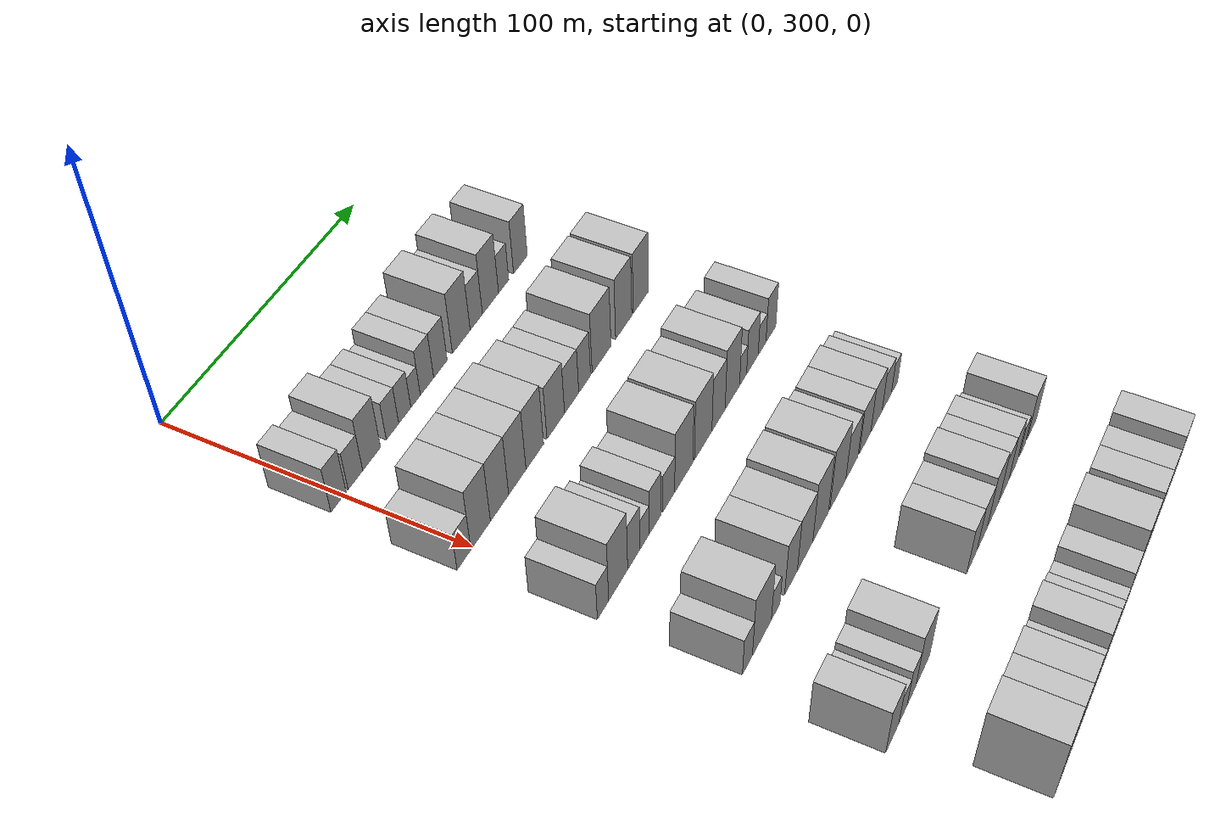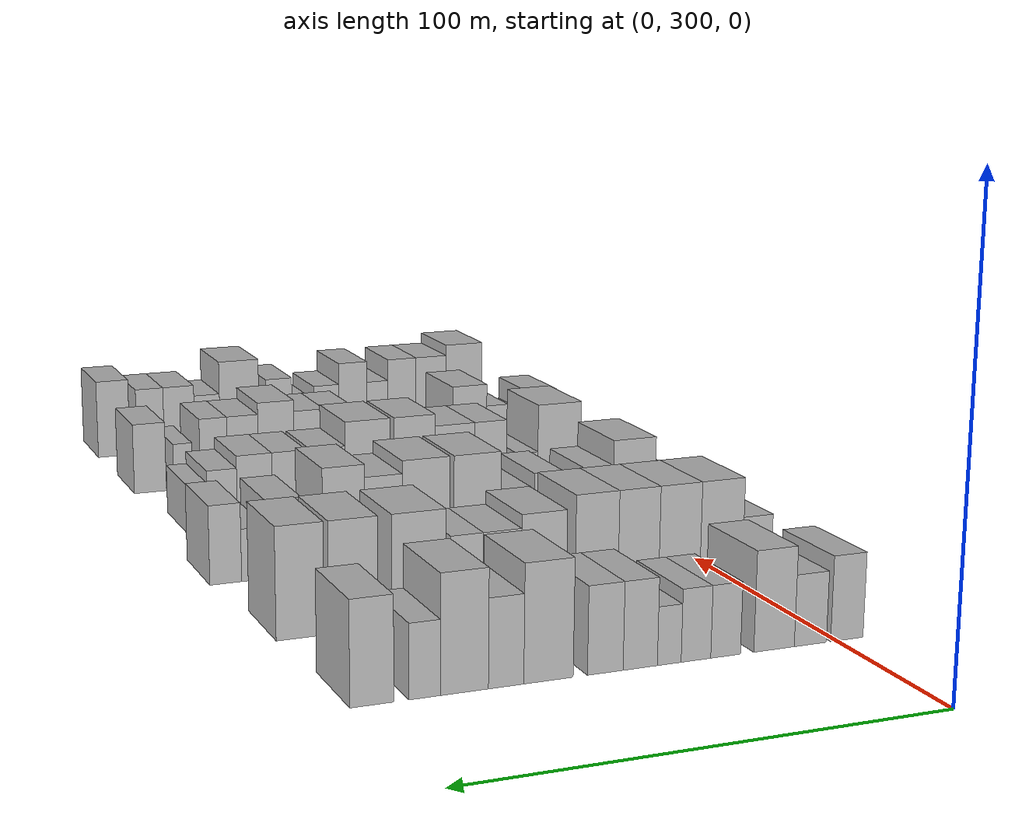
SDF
<sdf version="1.6">
 <world name="default">
  <model name="building_105">
   <static>1</static>
   <pose>50.0000 297.5111 0 0.000000 0.000000 0.000000</pose>
   <link name="link">
    <pose>0 0 9.00 0 0 0</pose>
    <collision name="collision"><geometry><box><size>20.0000 7.5519 18.0000</size></box></geometry></collision>
    <visual name="visual">
     <cast_shadows>0</cast_shadows>
     <geometry><box><size>20.0000 7.5519 18.0000</size></box></geometry>
     <material>
      <script>
       <uri>model://HANNAS_wall/materials/scripts</uri>
       <uri>model://HANNAS_wall/materials/textures</uri>
       <name>vrc/HANNAS_wall</name>
      </script>
     </material>
    </visual>
   </link>
  </model>
  <model name="building_106">
   <static>1</static>
   <pose>50.0000 305.9801 0 0.000000 0.000000 0.000000</pose>
   <link name="link">
    <pose>0 0 7.50 0 0 0</pose>
    <collision name="collision"><geometry><box><size>20.0000 7.3862 15.0000</size></box></geometry></collision>
    <visual name="visual">
     <cast_shadows>0</cast_shadows>
     <geometry><box><size>20.0000 7.3862 15.0000</size></box></geometry>
     <material>
      <script>
       <uri>model://HANNAS_wall/materials/scripts</uri>
       <uri>model://HANNAS_wall/materials/textures</uri>
       <name>vrc/HANNAS_wall</name>
      </script>
     </material>
    </visual>
   </link>
  </model>
  <model name="building_107">
   <static>1</static>
   <pose>50.0000 314.2756 0 0.000000 0.000000 0.000000</pose>
   <link name="link">
    <pose>0 0 10.50 0 0 0</pose>
    <collision name="collision"><geometry><box><size>20.0000 9.2049 21.0000</size></box></geometry></collision>
    <visual name="visual">
     <cast_shadows>0</cast_shadows>
     <geometry><box><size>20.0000 9.2049 21.0000</size></box></geometry>
     <material>
      <script>
       <uri>model://HANNAS_wall/materials/scripts</uri>
       <uri>model://HANNAS_wall/materials/textures</uri>
       <name>vrc/HANNAS_wall</name>
      </script>
     </material>
    </visual>
   </link>
  </model>
  <model name="building_108">
   <static>1</static>
   <pose>50.0000 325.1933 0 0.000000 0.000000 0.000000</pose>
   <link name="link">
    <pose>0 0 7.50 0 0 0</pose>
    <collision name="collision"><geometry><box><size>20.0000 6.6305 15.0000</size></box></geometry></collision>
    <visual name="visual">
     <cast_shadows>0</cast_shadows>
     <geometry><box><size>20.0000 6.6305 15.0000</size></box></geometry>
     <material>
      <script>
       <uri>model://HANNAS_wall/materials/scripts</uri>
       <uri>model://HANNAS_wall/materials/textures</uri>
       <name>vrc/HANNAS_wall</name>
      </script>
     </material>
    </visual>
   </link>
  </model>
  <model name="building_109">
   <static>1</static>
   <pose>50.0000 331.7762 0 0.000000 0.000000 0.000000</pose>
   <link name="link">
    <pose>0 0 7.50 0 0 0</pose>
    <collision name="collision"><geometry><box><size>20.0000 6.5353 15.0000</size></box></geometry></collision>
    <visual name="visual">
     <cast_shadows>0</cast_shadows>
     <geometry><box><size>20.0000 6.5353 15.0000</size></box></geometry>
     <material>
      <script>
       <uri>model://HANNAS_wall/materials/scripts</uri>
       <uri>model://HANNAS_wall/materials/textures</uri>
       <name>vrc/HANNAS_wall</name>
      </script>
     </material>
    </visual>
   </link>
  </model>
  <model name="building_110">
   <static>1</static>
   <pose>50.0000 337.6390 0 0.000000 0.000000 0.000000</pose>
   <link name="link">
    <pose>0 0 6.00 0 0 0</pose>
    <collision name="collision"><geometry><box><size>20.0000 5.1903 12.0000</size></box></geometry></collision>
    <visual name="visual">
     <cast_shadows>0</cast_shadows>
     <geometry><box><size>20.0000 5.1903 12.0000</size></box></geometry>
     <material>
      <script>
       <uri>model://HANNAS_wall/materials/scripts</uri>
       <uri>model://HANNAS_wall/materials/textures</uri>
       <name>vrc/HANNAS_wall</name>
      </script>
     </material>
    </visual>
   </link>
  </model>
  <model name="building_111">
   <static>1</static>
   <pose>50.0000 343.9298 0 0.000000 0.000000 0.000000</pose>
   <link name="link">
    <pose>0 0 9.00 0 0 0</pose>
    <collision name="collision"><geometry><box><size>20.0000 7.3913 18.0000</size></box></geometry></collision>
    <visual name="visual">
     <cast_shadows>0</cast_shadows>
     <geometry><box><size>20.0000 7.3913 18.0000</size></box></geometry>
     <material>
      <script>
       <uri>model://HANNAS_wall/materials/scripts</uri>
       <uri>model://HANNAS_wall/materials/textures</uri>
       <name>vrc/HANNAS_wall</name>
      </script>
     </material>
    </visual>
   </link>
  </model>
  <model name="building_112">
   <static>1</static>
   <pose>50.0000 351.4288 0 0.000000 0.000000 0.000000</pose>
   <link name="link">
    <pose>0 0 9.00 0 0 0</pose>
    <collision name="collision"><geometry><box><size>20.0000 7.6069 18.0000</size></box></geometry></collision>
    <visual name="visual">
     <cast_shadows>0</cast_shadows>
     <geometry><box><size>20.0000 7.6069 18.0000</size></box></geometry>
     <material>
      <script>
       <uri>model://HANNAS_wall/materials/scripts</uri>
       <uri>model://HANNAS_wall/materials/textures</uri>
       <name>vrc/HANNAS_wall</name>
      </script>
     </material>
    </visual>
   </link>
  </model>
  <model name="building_113">
   <static>1</static>
   <pose>50.0000 363.3846 0 0.000000 0.000000 0.000000</pose>
   <link name="link">
    <pose>0 0 12.00 0 0 0</pose>
    <collision name="collision"><geometry><box><size>20.0000 10.3046 24.0000</size></box></geometry></collision>
    <visual name="visual">
     <cast_shadows>0</cast_shadows>
     <geometry><box><size>20.0000 10.3046 24.0000</size></box></geometry>
     <material>
      <script>
       <uri>model://HANNAS_wall/materials/scripts</uri>
       <uri>model://HANNAS_wall/materials/textures</uri>
       <name>vrc/HANNAS_wall</name>
      </script>
     </material>
    </visual>
   </link>
  </model>
  <model name="building_114">
   <static>1</static>
   <pose>50.0000 372.1732 0 0.000000 0.000000 0.000000</pose>
   <link name="link">
    <pose>0 0 9.00 0 0 0</pose>
    <collision name="collision"><geometry><box><size>20.0000 7.2727 18.0000</size></box></geometry></collision>
    <visual name="visual">
     <cast_shadows>0</cast_shadows>
     <geometry><box><size>20.0000 7.2727 18.0000</size></box></geometry>
     <material>
      <script>
       <uri>model://HANNAS_wall/materials/scripts</uri>
       <uri>model://HANNAS_wall/materials/textures</uri>
       <name>vrc/HANNAS_wall</name>
      </script>
     </material>
    </visual>
   </link>
  </model>
  <model name="building_115">
   <static>1</static>
   <pose>50.0000 380.6760 0 0.000000 0.000000 0.000000</pose>
   <link name="link">
    <pose>0 0 12.00 0 0 0</pose>
    <collision name="collision"><geometry><box><size>20.0000 9.7329 24.0000</size></box></geometry></collision>
    <visual name="visual">
     <cast_shadows>0</cast_shadows>
     <geometry><box><size>20.0000 9.7329 24.0000</size></box></geometry>
     <material>
      <script>
       <uri>model://HANNAS_wall/materials/scripts</uri>
       <uri>model://HANNAS_wall/materials/textures</uri>
       <name>vrc/HANNAS_wall</name>
      </script>
     </material>
    </visual>
   </link>
  </model>
  <model name="building_116">
   <static>1</static>
   <pose>50.0000 388.6592 0 0.000000 0.000000 0.000000</pose>
   <link name="link">
    <pose>0 0 7.50 0 0 0</pose>
    <collision name="collision"><geometry><box><size>20.0000 6.2336 15.0000</size></box></geometry></collision>
    <visual name="visual">
     <cast_shadows>0</cast_shadows>
     <geometry><box><size>20.0000 6.2336 15.0000</size></box></geometry>
     <material>
      <script>
       <uri>model://HANNAS_wall/materials/scripts</uri>
       <uri>model://HANNAS_wall/materials/textures</uri>
       <name>vrc/HANNAS_wall</name>
      </script>
     </material>
    </visual>
   </link>
  </model>
  <model name="building_117">
   <static>1</static>
   <pose>50.0000 399.0877 0 0.000000 0.000000 0.000000</pose>
   <link name="link">
    <pose>0 0 10.50 0 0 0</pose>
    <collision name="collision"><geometry><box><size>20.0000 8.6234 21.0000</size></box></geometry></collision>
    <visual name="visual">
     <cast_shadows>0</cast_shadows>
     <geometry><box><size>20.0000 8.6234 21.0000</size></box></geometry>
     <material>
      <script>
       <uri>model://HANNAS_wall/materials/scripts</uri>
       <uri>model://HANNAS_wall/materials/textures</uri>
       <name>vrc/HANNAS_wall</name>
      </script>
     </material>
    </visual>
   </link>
  </model>
  <model name="building_247">
   <static>1</static>
   <pose>90.0000 295.4434 0 0.000000 0.000000 0.000000</pose>
   <link name="link">
    <pose>0 0 7.50 0 0 0</pose>
    <collision name="collision"><geometry><box><size>20.0000 7.2293 15.0000</size></box></geometry></collision>
    <visual name="visual">
     <cast_shadows>0</cast_shadows>
     <geometry><box><size>20.0000 7.2293 15.0000</size></box></geometry>
     <material>
      <script>
       <uri>model://HANNAS_wall/materials/scripts</uri>
       <uri>model://HANNAS_wall/materials/textures</uri>
       <name>vrc/HANNAS_wall</name>
      </script>
     </material>
    </visual>
   </link>
  </model>
  <model name="building_248">
   <static>1</static>
   <pose>90.0000 304.2917 0 0.000000 0.000000 0.000000</pose>
   <link name="link">
    <pose>0 0 12.00 0 0 0</pose>
    <collision name="collision"><geometry><box><size>20.0000 10.4672 24.0000</size></box></geometry></collision>
    <visual name="visual">
     <cast_shadows>0</cast_shadows>
     <geometry><box><size>20.0000 10.4672 24.0000</size></box></geometry>
     <material>
      <script>
       <uri>model://HANNAS_wall/materials/scripts</uri>
       <uri>model://HANNAS_wall/materials/textures</uri>
       <name>vrc/HANNAS_wall</name>
      </script>
     </material>
    </visual>
   </link>
  </model>
  <model name="building_249">
   <static>1</static>
   <pose>90.0000 314.5234 0 0.000000 0.000000 0.000000</pose>
   <link name="link">
    <pose>0 0 12.00 0 0 0</pose>
    <collision name="collision"><geometry><box><size>20.0000 9.9964 24.0000</size></box></geometry></collision>
    <visual name="visual">
     <cast_shadows>0</cast_shadows>
     <geometry><box><size>20.0000 9.9964 24.0000</size></box></geometry>
     <material>
      <script>
       <uri>model://HANNAS_wall/materials/scripts</uri>
       <uri>model://HANNAS_wall/materials/textures</uri>
       <name>vrc/HANNAS_wall</name>
      </script>
     </material>
    </visual>
   </link>
  </model>
  <model name="building_250">
   <static>1</static>
   <pose>90.0000 324.3960 0 0.000000 0.000000 0.000000</pose>
   <link name="link">
    <pose>0 0 12.00 0 0 0</pose>
    <collision name="collision"><geometry><box><size>20.0000 9.7488 24.0000</size></box></geometry></collision>
    <visual name="visual">
     <cast_shadows>0</cast_shadows>
     <geometry><box><size>20.0000 9.7488 24.0000</size></box></geometry>
     <material>
      <script>
       <uri>model://HANNAS_wall/materials/scripts</uri>
       <uri>model://HANNAS_wall/materials/textures</uri>
       <name>vrc/HANNAS_wall</name>
      </script>
     </material>
    </visual>
   </link>
  </model>
  <model name="building_251">
   <static>1</static>
   <pose>90.0000 334.3262 0 0.000000 0.000000 0.000000</pose>
   <link name="link">
    <pose>0 0 12.00 0 0 0</pose>
    <collision name="collision"><geometry><box><size>20.0000 10.1115 24.0000</size></box></geometry></collision>
    <visual name="visual">
     <cast_shadows>0</cast_shadows>
     <geometry><box><size>20.0000 10.1115 24.0000</size></box></geometry>
     <material>
      <script>
       <uri>model://HANNAS_wall/materials/scripts</uri>
       <uri>model://HANNAS_wall/materials/textures</uri>
       <name>vrc/HANNAS_wall</name>
      </script>
     </material>
    </visual>
   </link>
  </model>
  <model name="building_252">
   <static>1</static>
   <pose>90.0000 346.6074 0 0.000000 0.000000 0.000000</pose>
   <link name="link">
    <pose>0 0 10.50 0 0 0</pose>
    <collision name="collision"><geometry><box><size>20.0000 10.4509 21.0000</size></box></geometry></collision>
    <visual name="visual">
     <cast_shadows>0</cast_shadows>
     <geometry><box><size>20.0000 10.4509 21.0000</size></box></geometry>
     <material>
      <script>
       <uri>model://HANNAS_wall/materials/scripts</uri>
       <uri>model://HANNAS_wall/materials/textures</uri>
       <name>vrc/HANNAS_wall</name>
      </script>
     </material>
    </visual>
   </link>
  </model>
  <model name="building_253">
   <static>1</static>
   <pose>90.0000 356.1520 0 0.000000 0.000000 0.000000</pose>
   <link name="link">
    <pose>0 0 9.00 0 0 0</pose>
    <collision name="collision"><geometry><box><size>20.0000 8.6382 18.0000</size></box></geometry></collision>
    <visual name="visual">
     <cast_shadows>0</cast_shadows>
     <geometry><box><size>20.0000 8.6382 18.0000</size></box></geometry>
     <material>
      <script>
       <uri>model://HANNAS_wall/materials/scripts</uri>
       <uri>model://HANNAS_wall/materials/textures</uri>
       <name>vrc/HANNAS_wall</name>
      </script>
     </material>
    </visual>
   </link>
  </model>
  <model name="building_254">
   <static>1</static>
   <pose>90.0000 364.1255 0 0.000000 0.000000 0.000000</pose>
   <link name="link">
    <pose>0 0 9.00 0 0 0</pose>
    <collision name="collision"><geometry><box><size>20.0000 7.3090 18.0000</size></box></geometry></collision>
    <visual name="visual">
     <cast_shadows>0</cast_shadows>
     <geometry><box><size>20.0000 7.3090 18.0000</size></box></geometry>
     <material>
      <script>
       <uri>model://HANNAS_wall/materials/scripts</uri>
       <uri>model://HANNAS_wall/materials/textures</uri>
       <name>vrc/HANNAS_wall</name>
      </script>
     </material>
    </visual>
   </link>
  </model>
  <model name="building_255">
   <static>1</static>
   <pose>90.0000 374.7635 0 0.000000 0.000000 0.000000</pose>
   <link name="link">
    <pose>0 0 12.00 0 0 0</pose>
    <collision name="collision"><geometry><box><size>20.0000 11.9669 24.0000</size></box></geometry></collision>
    <visual name="visual">
     <cast_shadows>0</cast_shadows>
     <geometry><box><size>20.0000 11.9669 24.0000</size></box></geometry>
     <material>
      <script>
       <uri>model://HANNAS_wall/materials/scripts</uri>
       <uri>model://HANNAS_wall/materials/textures</uri>
       <name>vrc/HANNAS_wall</name>
      </script>
     </material>
    </visual>
   </link>
  </model>
  <model name="building_256">
   <static>1</static>
   <pose>90.0000 389.0404 0 0.000000 0.000000 0.000000</pose>
   <link name="link">
    <pose>0 0 12.00 0 0 0</pose>
    <collision name="collision"><geometry><box><size>20.0000 10.5868 24.0000</size></box></geometry></collision>
    <visual name="visual">
     <cast_shadows>0</cast_shadows>
     <geometry><box><size>20.0000 10.5868 24.0000</size></box></geometry>
     <material>
      <script>
       <uri>model://HANNAS_wall/materials/scripts</uri>
       <uri>model://HANNAS_wall/materials/textures</uri>
       <name>vrc/HANNAS_wall</name>
      </script>
     </material>
    </visual>
   </link>
  </model>
  <model name="building_257">
   <static>1</static>
   <pose>90.0000 400.4272 0 0.000000 0.000000 0.000000</pose>
   <link name="link">
    <pose>0 0 12.00 0 0 0</pose>
    <collision name="collision"><geometry><box><size>20.0000 10.1869 24.0000</size></box></geometry></collision>
    <visual name="visual">
     <cast_shadows>0</cast_shadows>
     <geometry><box><size>20.0000 10.1869 24.0000</size></box></geometry>
     <material>
      <script>
       <uri>model://HANNAS_wall/materials/scripts</uri>
       <uri>model://HANNAS_wall/materials/textures</uri>
       <name>vrc/HANNAS_wall</name>
      </script>
     </material>
    </visual>
   </link>
  </model>
  <model name="building_372">
   <static>1</static>
   <pose>130.0000 297.0136 0 0.000000 0.000000 0.000000</pose>
   <link name="link">
    <pose>0 0 7.50 0 0 0</pose>
    <collision name="collision"><geometry><box><size>20.0000 6.4162 15.0000</size></box></geometry></collision>
    <visual name="visual">
     <cast_shadows>0</cast_shadows>
     <geometry><box><size>20.0000 6.4162 15.0000</size></box></geometry>
     <material>
      <script>
       <uri>model://HANNAS_wall/materials/scripts</uri>
       <uri>model://HANNAS_wall/materials/textures</uri>
       <name>vrc/HANNAS_wall</name>
      </script>
     </material>
    </visual>
   </link>
  </model>
  <model name="building_373">
   <static>1</static>
   <pose>130.0000 305.6874 0 0.000000 0.000000 0.000000</pose>
   <link name="link">
    <pose>0 0 12.00 0 0 0</pose>
    <collision name="collision"><geometry><box><size>20.0000 10.9313 24.0000</size></box></geometry></collision>
    <visual name="visual">
     <cast_shadows>0</cast_shadows>
     <geometry><box><size>20.0000 10.9313 24.0000</size></box></geometry>
     <material>
      <script>
       <uri>model://HANNAS_wall/materials/scripts</uri>
       <uri>model://HANNAS_wall/materials/textures</uri>
       <name>vrc/HANNAS_wall</name>
      </script>
     </material>
    </visual>
   </link>
  </model>
  <model name="building_374">
   <static>1</static>
   <pose>130.0000 314.8265 0 0.000000 0.000000 0.000000</pose>
   <link name="link">
    <pose>0 0 9.00 0 0 0</pose>
    <collision name="collision"><geometry><box><size>20.0000 7.3469 18.0000</size></box></geometry></collision>
    <visual name="visual">
     <cast_shadows>0</cast_shadows>
     <geometry><box><size>20.0000 7.3469 18.0000</size></box></geometry>
     <material>
      <script>
       <uri>model://HANNAS_wall/materials/scripts</uri>
       <uri>model://HANNAS_wall/materials/textures</uri>
       <name>vrc/HANNAS_wall</name>
      </script>
     </material>
    </visual>
   </link>
  </model>
  <model name="building_375">
   <static>1</static>
   <pose>130.0000 321.3036 0 0.000000 0.000000 0.000000</pose>
   <link name="link">
    <pose>0 0 6.00 0 0 0</pose>
    <collision name="collision"><geometry><box><size>20.0000 5.6074 12.0000</size></box></geometry></collision>
    <visual name="visual">
     <cast_shadows>0</cast_shadows>
     <geometry><box><size>20.0000 5.6074 12.0000</size></box></geometry>
     <material>
      <script>
       <uri>model://HANNAS_wall/materials/scripts</uri>
       <uri>model://HANNAS_wall/materials/textures</uri>
       <name>vrc/HANNAS_wall</name>
      </script>
     </material>
    </visual>
   </link>
  </model>
  <model name="building_376">
   <static>1</static>
   <pose>130.0000 327.7236 0 0.000000 0.000000 0.000000</pose>
   <link name="link">
    <pose>0 0 9.00 0 0 0</pose>
    <collision name="collision"><geometry><box><size>20.0000 7.2326 18.0000</size></box></geometry></collision>
    <visual name="visual">
     <cast_shadows>0</cast_shadows>
     <geometry><box><size>20.0000 7.2326 18.0000</size></box></geometry>
     <material>
      <script>
       <uri>model://HANNAS_wall/materials/scripts</uri>
       <uri>model://HANNAS_wall/materials/textures</uri>
       <name>vrc/HANNAS_wall</name>
      </script>
     </material>
    </visual>
   </link>
  </model>
  <model name="building_377">
   <static>1</static>
   <pose>130.0000 336.0227 0 0.000000 0.000000 0.000000</pose>
   <link name="link">
    <pose>0 0 7.50 0 0 0</pose>
    <collision name="collision"><geometry><box><size>20.0000 7.3656 15.0000</size></box></geometry></collision>
    <visual name="visual">
     <cast_shadows>0</cast_shadows>
     <geometry><box><size>20.0000 7.3656 15.0000</size></box></geometry>
     <material>
      <script>
       <uri>model://HANNAS_wall/materials/scripts</uri>
       <uri>model://HANNAS_wall/materials/textures</uri>
       <name>vrc/HANNAS_wall</name>
      </script>
     </material>
    </visual>
   </link>
  </model>
  <model name="building_378">
   <static>1</static>
   <pose>130.0000 345.4700 0 0.000000 0.000000 0.000000</pose>
   <link name="link">
    <pose>0 0 12.00 0 0 0</pose>
    <collision name="collision"><geometry><box><size>20.0000 11.5290 24.0000</size></box></geometry></collision>
    <visual name="visual">
     <cast_shadows>0</cast_shadows>
     <geometry><box><size>20.0000 11.5290 24.0000</size></box></geometry>
     <material>
      <script>
       <uri>model://HANNAS_wall/materials/scripts</uri>
       <uri>model://HANNAS_wall/materials/textures</uri>
       <name>vrc/HANNAS_wall</name>
      </script>
     </material>
    </visual>
   </link>
  </model>
  <model name="building_379">
   <static>1</static>
   <pose>130.0000 358.0025 0 0.000000 0.000000 0.000000</pose>
   <link name="link">
    <pose>0 0 12.00 0 0 0</pose>
    <collision name="collision"><geometry><box><size>20.0000 11.5360 24.0000</size></box></geometry></collision>
    <visual name="visual">
     <cast_shadows>0</cast_shadows>
     <geometry><box><size>20.0000 11.5360 24.0000</size></box></geometry>
     <material>
      <script>
       <uri>model://HANNAS_wall/materials/scripts</uri>
       <uri>model://HANNAS_wall/materials/textures</uri>
       <name>vrc/HANNAS_wall</name>
      </script>
     </material>
    </visual>
   </link>
  </model>
  <model name="building_380">
   <static>1</static>
   <pose>130.0000 368.2264 0 0.000000 0.000000 0.000000</pose>
   <link name="link">
    <pose>0 0 10.50 0 0 0</pose>
    <collision name="collision"><geometry><box><size>20.0000 8.9118 21.0000</size></box></geometry></collision>
    <visual name="visual">
     <cast_shadows>0</cast_shadows>
     <geometry><box><size>20.0000 8.9118 21.0000</size></box></geometry>
     <material>
      <script>
       <uri>model://HANNAS_wall/materials/scripts</uri>
       <uri>model://HANNAS_wall/materials/textures</uri>
       <name>vrc/HANNAS_wall</name>
      </script>
     </material>
    </visual>
   </link>
  </model>
  <model name="building_381">
   <static>1</static>
   <pose>130.0000 377.6518 0 0.000000 0.000000 0.000000</pose>
   <link name="link">
    <pose>0 0 12.00 0 0 0</pose>
    <collision name="collision"><geometry><box><size>20.0000 9.9390 24.0000</size></box></geometry></collision>
    <visual name="visual">
     <cast_shadows>0</cast_shadows>
     <geometry><box><size>20.0000 9.9390 24.0000</size></box></geometry>
     <material>
      <script>
       <uri>model://HANNAS_wall/materials/scripts</uri>
       <uri>model://HANNAS_wall/materials/textures</uri>
       <name>vrc/HANNAS_wall</name>
      </script>
     </material>
    </visual>
   </link>
  </model>
  <model name="building_382">
   <static>1</static>
   <pose>130.0000 385.0848 0 0.000000 0.000000 0.000000</pose>
   <link name="link">
    <pose>0 0 6.00 0 0 0</pose>
    <collision name="collision"><geometry><box><size>20.0000 4.9271 12.0000</size></box></geometry></collision>
    <visual name="visual">
     <cast_shadows>0</cast_shadows>
     <geometry><box><size>20.0000 4.9271 12.0000</size></box></geometry>
     <material>
      <script>
       <uri>model://HANNAS_wall/materials/scripts</uri>
       <uri>model://HANNAS_wall/materials/textures</uri>
       <name>vrc/HANNAS_wall</name>
      </script>
     </material>
    </visual>
   </link>
  </model>
  <model name="building_383">
   <static>1</static>
   <pose>130.0000 391.6738 0 0.000000 0.000000 0.000000</pose>
   <link name="link">
    <pose>0 0 9.00 0 0 0</pose>
    <collision name="collision"><geometry><box><size>20.0000 8.2508 18.0000</size></box></geometry></collision>
    <visual name="visual">
     <cast_shadows>0</cast_shadows>
     <geometry><box><size>20.0000 8.2508 18.0000</size></box></geometry>
     <material>
      <script>
       <uri>model://HANNAS_wall/materials/scripts</uri>
       <uri>model://HANNAS_wall/materials/textures</uri>
       <name>vrc/HANNAS_wall</name>
      </script>
     </material>
    </visual>
   </link>
  </model>
  <model name="building_384">
   <static>1</static>
   <pose>130.0000 398.6186 0 0.000000 0.000000 0.000000</pose>
   <link name="link">
    <pose>0 0 6.00 0 0 0</pose>
    <collision name="collision"><geometry><box><size>20.0000 5.6390 12.0000</size></box></geometry></collision>
    <visual name="visual">
     <cast_shadows>0</cast_shadows>
     <geometry><box><size>20.0000 5.6390 12.0000</size></box></geometry>
     <material>
      <script>
       <uri>model://HANNAS_wall/materials/scripts</uri>
       <uri>model://HANNAS_wall/materials/textures</uri>
       <name>vrc/HANNAS_wall</name>
      </script>
     </material>
    </visual>
   </link>
  </model>
  <model name="building_385">
   <static>1</static>
   <pose>130.0000 405.0465 0 0.000000 0.000000 0.000000</pose>
   <link name="link">
    <pose>0 0 9.00 0 0 0</pose>
    <collision name="collision"><geometry><box><size>20.0000 7.2168 18.0000</size></box></geometry></collision>
    <visual name="visual">
     <cast_shadows>0</cast_shadows>
     <geometry><box><size>20.0000 7.2168 18.0000</size></box></geometry>
     <material>
      <script>
       <uri>model://HANNAS_wall/materials/scripts</uri>
       <uri>model://HANNAS_wall/materials/textures</uri>
       <name>vrc/HANNAS_wall</name>
      </script>
     </material>
    </visual>
   </link>
  </model>
  <model name="building_514">
   <static>1</static>
   <pose>170.0000 297.7584 0 0.000000 0.000000 0.000000</pose>
   <link name="link">
    <pose>0 0 7.50 0 0 0</pose>
    <collision name="collision"><geometry><box><size>20.0000 6.1662 15.0000</size></box></geometry></collision>
    <visual name="visual">
     <cast_shadows>0</cast_shadows>
     <geometry><box><size>20.0000 6.1662 15.0000</size></box></geometry>
     <material>
      <script>
       <uri>model://HANNAS_wall/materials/scripts</uri>
       <uri>model://HANNAS_wall/materials/textures</uri>
       <name>vrc/HANNAS_wall</name>
      </script>
     </material>
    </visual>
   </link>
  </model>
  <model name="building_515">
   <static>1</static>
   <pose>170.0000 306.7968 0 0.000000 0.000000 0.000000</pose>
   <link name="link">
    <pose>0 0 12.00 0 0 0</pose>
    <collision name="collision"><geometry><box><size>20.0000 11.9106 24.0000</size></box></geometry></collision>
    <visual name="visual">
     <cast_shadows>0</cast_shadows>
     <geometry><box><size>20.0000 11.9106 24.0000</size></box></geometry>
     <material>
      <script>
       <uri>model://HANNAS_wall/materials/scripts</uri>
       <uri>model://HANNAS_wall/materials/textures</uri>
       <name>vrc/HANNAS_wall</name>
      </script>
     </material>
    </visual>
   </link>
  </model>
  <model name="building_516">
   <static>1</static>
   <pose>170.0000 315.5472 0 0.000000 0.000000 0.000000</pose>
   <link name="link">
    <pose>0 0 6.00 0 0 0</pose>
    <collision name="collision"><geometry><box><size>20.0000 5.5903 12.0000</size></box></geometry></collision>
    <visual name="visual">
     <cast_shadows>0</cast_shadows>
     <geometry><box><size>20.0000 5.5903 12.0000</size></box></geometry>
     <material>
      <script>
       <uri>model://HANNAS_wall/materials/scripts</uri>
       <uri>model://HANNAS_wall/materials/textures</uri>
       <name>vrc/HANNAS_wall</name>
      </script>
     </material>
    </visual>
   </link>
  </model>
  <model name="building_517">
   <static>1</static>
   <pose>170.0000 325.6150 0 0.000000 0.000000 0.000000</pose>
   <link name="link">
    <pose>0 0 10.50 0 0 0</pose>
    <collision name="collision"><geometry><box><size>20.0000 8.5453 21.0000</size></box></geometry></collision>
    <visual name="visual">
     <cast_shadows>0</cast_shadows>
     <geometry><box><size>20.0000 8.5453 21.0000</size></box></geometry>
     <material>
      <script>
       <uri>model://HANNAS_wall/materials/scripts</uri>
       <uri>model://HANNAS_wall/materials/textures</uri>
       <name>vrc/HANNAS_wall</name>
      </script>
     </material>
    </visual>
   </link>
  </model>
  <model name="building_518">
   <static>1</static>
   <pose>170.0000 335.1336 0 0.000000 0.000000 0.000000</pose>
   <link name="link">
    <pose>0 0 10.50 0 0 0</pose>
    <collision name="collision"><geometry><box><size>20.0000 10.4918 21.0000</size></box></geometry></collision>
    <visual name="visual">
     <cast_shadows>0</cast_shadows>
     <geometry><box><size>20.0000 10.4918 21.0000</size></box></geometry>
     <material>
      <script>
       <uri>model://HANNAS_wall/materials/scripts</uri>
       <uri>model://HANNAS_wall/materials/textures</uri>
       <name>vrc/HANNAS_wall</name>
      </script>
     </material>
    </visual>
   </link>
  </model>
  <model name="building_519">
   <static>1</static>
   <pose>170.0000 345.8137 0 0.000000 0.000000 0.000000</pose>
   <link name="link">
    <pose>0 0 12.00 0 0 0</pose>
    <collision name="collision"><geometry><box><size>20.0000 10.8684 24.0000</size></box></geometry></collision>
    <visual name="visual">
     <cast_shadows>0</cast_shadows>
     <geometry><box><size>20.0000 10.8684 24.0000</size></box></geometry>
     <material>
      <script>
       <uri>model://HANNAS_wall/materials/scripts</uri>
       <uri>model://HANNAS_wall/materials/textures</uri>
       <name>vrc/HANNAS_wall</name>
      </script>
     </material>
    </visual>
   </link>
  </model>
  <model name="building_520">
   <static>1</static>
   <pose>170.0000 358.0387 0 0.000000 0.000000 0.000000</pose>
   <link name="link">
    <pose>0 0 12.00 0 0 0</pose>
    <collision name="collision"><geometry><box><size>20.0000 11.5817 24.0000</size></box></geometry></collision>
    <visual name="visual">
     <cast_shadows>0</cast_shadows>
     <geometry><box><size>20.0000 11.5817 24.0000</size></box></geometry>
     <material>
      <script>
       <uri>model://HANNAS_wall/materials/scripts</uri>
       <uri>model://HANNAS_wall/materials/textures</uri>
       <name>vrc/HANNAS_wall</name>
      </script>
     </material>
    </visual>
   </link>
  </model>
  <model name="building_521">
   <static>1</static>
   <pose>170.0000 368.2893 0 0.000000 0.000000 0.000000</pose>
   <link name="link">
    <pose>0 0 9.00 0 0 0</pose>
    <collision name="collision"><geometry><box><size>20.0000 8.9195 18.0000</size></box></geometry></collision>
    <visual name="visual">
     <cast_shadows>0</cast_shadows>
     <geometry><box><size>20.0000 8.9195 18.0000</size></box></geometry>
     <material>
      <script>
       <uri>model://HANNAS_wall/materials/scripts</uri>
       <uri>model://HANNAS_wall/materials/textures</uri>
       <name>vrc/HANNAS_wall</name>
      </script>
     </material>
    </visual>
   </link>
  </model>
  <model name="building_522">
   <static>1</static>
   <pose>170.0000 378.0807 0 0.000000 0.000000 0.000000</pose>
   <link name="link">
    <pose>0 0 9.00 0 0 0</pose>
    <collision name="collision"><geometry><box><size>20.0000 8.6633 18.0000</size></box></geometry></collision>
    <visual name="visual">
     <cast_shadows>0</cast_shadows>
     <geometry><box><size>20.0000 8.6633 18.0000</size></box></geometry>
     <material>
      <script>
       <uri>model://HANNAS_wall/materials/scripts</uri>
       <uri>model://HANNAS_wall/materials/textures</uri>
       <name>vrc/HANNAS_wall</name>
      </script>
     </material>
    </visual>
   </link>
  </model>
  <model name="building_523">
   <static>1</static>
   <pose>170.0000 386.7864 0 0.000000 0.000000 0.000000</pose>
   <link name="link">
    <pose>0 0 9.00 0 0 0</pose>
    <collision name="collision"><geometry><box><size>20.0000 8.7481 18.0000</size></box></geometry></collision>
    <visual name="visual">
     <cast_shadows>0</cast_shadows>
     <geometry><box><size>20.0000 8.7481 18.0000</size></box></geometry>
     <material>
      <script>
       <uri>model://HANNAS_wall/materials/scripts</uri>
       <uri>model://HANNAS_wall/materials/textures</uri>
       <name>vrc/HANNAS_wall</name>
      </script>
     </material>
    </visual>
   </link>
  </model>
  <model name="building_524">
   <static>1</static>
   <pose>170.0000 394.8204 0 0.000000 0.000000 0.000000</pose>
   <link name="link">
    <pose>0 0 7.50 0 0 0</pose>
    <collision name="collision"><geometry><box><size>20.0000 7.3197 15.0000</size></box></geometry></collision>
    <visual name="visual">
     <cast_shadows>0</cast_shadows>
     <geometry><box><size>20.0000 7.3197 15.0000</size></box></geometry>
     <material>
      <script>
       <uri>model://HANNAS_wall/materials/scripts</uri>
       <uri>model://HANNAS_wall/materials/textures</uri>
       <name>vrc/HANNAS_wall</name>
      </script>
     </material>
    </visual>
   </link>
  </model>
  <model name="building_525">
   <static>1</static>
   <pose>170.0000 400.9628 0 0.000000 0.000000 0.000000</pose>
   <link name="link">
    <pose>0 0 6.00 0 0 0</pose>
    <collision name="collision"><geometry><box><size>20.0000 4.9651 12.0000</size></box></geometry></collision>
    <visual name="visual">
     <cast_shadows>0</cast_shadows>
     <geometry><box><size>20.0000 4.9651 12.0000</size></box></geometry>
     <material>
      <script>
       <uri>model://HANNAS_wall/materials/scripts</uri>
       <uri>model://HANNAS_wall/materials/textures</uri>
       <name>vrc/HANNAS_wall</name>
      </script>
     </material>
    </visual>
   </link>
  </model>
  <model name="building_653">
   <static>1</static>
   <pose>210.0000 293.7843 0 0.000000 0.000000 0.000000</pose>
   <link name="link">
    <pose>0 0 9.00 0 0 0</pose>
    <collision name="collision"><geometry><box><size>20.0000 8.8179 18.0000</size></box></geometry></collision>
    <visual name="visual">
     <cast_shadows>0</cast_shadows>
     <geometry><box><size>20.0000 8.8179 18.0000</size></box></geometry>
     <material>
      <script>
       <uri>model://HANNAS_wall/materials/scripts</uri>
       <uri>model://HANNAS_wall/materials/textures</uri>
       <name>vrc/HANNAS_wall</name>
      </script>
     </material>
    </visual>
   </link>
  </model>
  <model name="building_654">
   <static>1</static>
   <pose>210.0000 301.0702 0 0.000000 0.000000 0.000000</pose>
   <link name="link">
    <pose>0 0 6.00 0 0 0</pose>
    <collision name="collision"><geometry><box><size>20.0000 5.7541 12.0000</size></box></geometry></collision>
    <visual name="visual">
     <cast_shadows>0</cast_shadows>
     <geometry><box><size>20.0000 5.7541 12.0000</size></box></geometry>
     <material>
      <script>
       <uri>model://HANNAS_wall/materials/scripts</uri>
       <uri>model://HANNAS_wall/materials/textures</uri>
       <name>vrc/HANNAS_wall</name>
      </script>
     </material>
    </visual>
   </link>
  </model>
  <model name="building_655">
   <static>1</static>
   <pose>210.0000 307.0592 0 0.000000 0.000000 0.000000</pose>
   <link name="link">
    <pose>0 0 7.50 0 0 0</pose>
    <collision name="collision"><geometry><box><size>20.0000 6.2239 15.0000</size></box></geometry></collision>
    <visual name="visual">
     <cast_shadows>0</cast_shadows>
     <geometry><box><size>20.0000 6.2239 15.0000</size></box></geometry>
     <material>
      <script>
       <uri>model://HANNAS_wall/materials/scripts</uri>
       <uri>model://HANNAS_wall/materials/textures</uri>
       <name>vrc/HANNAS_wall</name>
      </script>
     </material>
    </visual>
   </link>
  </model>
  <model name="building_656">
   <static>1</static>
   <pose>210.0000 315.1242 0 0.000000 0.000000 0.000000</pose>
   <link name="link">
    <pose>0 0 10.50 0 0 0</pose>
    <collision name="collision"><geometry><box><size>20.0000 9.9060 21.0000</size></box></geometry></collision>
    <visual name="visual">
     <cast_shadows>0</cast_shadows>
     <geometry><box><size>20.0000 9.9060 21.0000</size></box></geometry>
     <material>
      <script>
       <uri>model://HANNAS_wall/materials/scripts</uri>
       <uri>model://HANNAS_wall/materials/textures</uri>
       <name>vrc/HANNAS_wall</name>
      </script>
     </material>
    </visual>
   </link>
  </model>
  <model name="building_657">
   <static>1</static>
   <pose>210.0000 352.1984 0 0.000000 0.000000 0.000000</pose>
   <link name="link">
    <pose>0 0 9.00 0 0 0</pose>
    <collision name="collision"><geometry><box><size>20.0000 8.0808 18.0000</size></box></geometry></collision>
    <visual name="visual">
     <cast_shadows>0</cast_shadows>
     <geometry><box><size>20.0000 8.0808 18.0000</size></box></geometry>
     <material>
      <script>
       <uri>model://HANNAS_wall/materials/scripts</uri>
       <uri>model://HANNAS_wall/materials/textures</uri>
       <name>vrc/HANNAS_wall</name>
      </script>
     </material>
    </visual>
   </link>
  </model>
  <model name="building_658">
   <static>1</static>
   <pose>210.0000 360.3860 0 0.000000 0.000000 0.000000</pose>
   <link name="link">
    <pose>0 0 9.00 0 0 0</pose>
    <collision name="collision"><geometry><box><size>20.0000 8.2944 18.0000</size></box></geometry></collision>
    <visual name="visual">
     <cast_shadows>0</cast_shadows>
     <geometry><box><size>20.0000 8.2944 18.0000</size></box></geometry>
     <material>
      <script>
       <uri>model://HANNAS_wall/materials/scripts</uri>
       <uri>model://HANNAS_wall/materials/textures</uri>
       <name>vrc/HANNAS_wall</name>
      </script>
     </material>
    </visual>
   </link>
  </model>
  <model name="building_659">
   <static>1</static>
   <pose>210.0000 369.4135 0 0.000000 0.000000 0.000000</pose>
   <link name="link">
    <pose>0 0 10.50 0 0 0</pose>
    <collision name="collision"><geometry><box><size>20.0000 9.7606 21.0000</size></box></geometry></collision>
    <visual name="visual">
     <cast_shadows>0</cast_shadows>
     <geometry><box><size>20.0000 9.7606 21.0000</size></box></geometry>
     <material>
      <script>
       <uri>model://HANNAS_wall/materials/scripts</uri>
       <uri>model://HANNAS_wall/materials/textures</uri>
       <name>vrc/HANNAS_wall</name>
      </script>
     </material>
    </visual>
   </link>
  </model>
  <model name="building_660">
   <static>1</static>
   <pose>210.0000 378.4507 0 0.000000 0.000000 0.000000</pose>
   <link name="link">
    <pose>0 0 9.00 0 0 0</pose>
    <collision name="collision"><geometry><box><size>20.0000 8.3138 18.0000</size></box></geometry></collision>
    <visual name="visual">
     <cast_shadows>0</cast_shadows>
     <geometry><box><size>20.0000 8.3138 18.0000</size></box></geometry>
     <material>
      <script>
       <uri>model://HANNAS_wall/materials/scripts</uri>
       <uri>model://HANNAS_wall/materials/textures</uri>
       <name>vrc/HANNAS_wall</name>
      </script>
     </material>
    </visual>
   </link>
  </model>
  <model name="building_661">
   <static>1</static>
   <pose>210.0000 386.2417 0 0.000000 0.000000 0.000000</pose>
   <link name="link">
    <pose>0 0 9.00 0 0 0</pose>
    <collision name="collision"><geometry><box><size>20.0000 7.2682 18.0000</size></box></geometry></collision>
    <visual name="visual">
     <cast_shadows>0</cast_shadows>
     <geometry><box><size>20.0000 7.2682 18.0000</size></box></geometry>
     <material>
      <script>
       <uri>model://HANNAS_wall/materials/scripts</uri>
       <uri>model://HANNAS_wall/materials/textures</uri>
       <name>vrc/HANNAS_wall</name>
      </script>
     </material>
    </visual>
   </link>
  </model>
  <model name="building_662">
   <static>1</static>
   <pose>210.0000 394.3726 0 0.000000 0.000000 0.000000</pose>
   <link name="link">
    <pose>0 0 6.00 0 0 0</pose>
    <collision name="collision"><geometry><box><size>20.0000 4.9936 12.0000</size></box></geometry></collision>
    <visual name="visual">
     <cast_shadows>0</cast_shadows>
     <geometry><box><size>20.0000 4.9936 12.0000</size></box></geometry>
     <material>
      <script>
       <uri>model://HANNAS_wall/materials/scripts</uri>
       <uri>model://HANNAS_wall/materials/textures</uri>
       <name>vrc/HANNAS_wall</name>
      </script>
     </material>
    </visual>
   </link>
  </model>
  <model name="building_663">
   <static>1</static>
   <pose>210.0000 403.0314 0 0.000000 0.000000 0.000000</pose>
   <link name="link">
    <pose>0 0 9.00 0 0 0</pose>
    <collision name="collision"><geometry><box><size>20.0000 8.3240 18.0000</size></box></geometry></collision>
    <visual name="visual">
     <cast_shadows>0</cast_shadows>
     <geometry><box><size>20.0000 8.3240 18.0000</size></box></geometry>
     <material>
      <script>
       <uri>model://HANNAS_wall/materials/scripts</uri>
       <uri>model://HANNAS_wall/materials/textures</uri>
       <name>vrc/HANNAS_wall</name>
      </script>
     </material>
    </visual>
   </link>
  </model>
  <model name="building_779">
   <static>1</static>
   <pose>250.0000 300.8121 0 0.000000 0.000000 0.000000</pose>
   <link name="link">
    <pose>0 0 12.00 0 0 0</pose>
    <collision name="collision"><geometry><box><size>20.0000 11.2419 24.0000</size></box></geometry></collision>
    <visual name="visual">
     <cast_shadows>0</cast_shadows>
     <geometry><box><size>20.0000 11.2419 24.0000</size></box></geometry>
     <material>
      <script>
       <uri>model://HANNAS_wall/materials/scripts</uri>
       <uri>model://HANNAS_wall/materials/textures</uri>
       <name>vrc/HANNAS_wall</name>
      </script>
     </material>
    </visual>
   </link>
  </model>
  <model name="building_780">
   <static>1</static>
   <pose>250.0000 311.0219 0 0.000000 0.000000 0.000000</pose>
   <link name="link">
    <pose>0 0 10.50 0 0 0</pose>
    <collision name="collision"><geometry><box><size>20.0000 9.1776 21.0000</size></box></geometry></collision>
    <visual name="visual">
     <cast_shadows>0</cast_shadows>
     <geometry><box><size>20.0000 9.1776 21.0000</size></box></geometry>
     <material>
      <script>
       <uri>model://HANNAS_wall/materials/scripts</uri>
       <uri>model://HANNAS_wall/materials/textures</uri>
       <name>vrc/HANNAS_wall</name>
      </script>
     </material>
    </visual>
   </link>
  </model>
  <model name="building_781">
   <static>1</static>
   <pose>250.0000 319.8747 0 0.000000 0.000000 0.000000</pose>
   <link name="link">
    <pose>0 0 10.50 0 0 0</pose>
    <collision name="collision"><geometry><box><size>20.0000 8.5280 21.0000</size></box></geometry></collision>
    <visual name="visual">
     <cast_shadows>0</cast_shadows>
     <geometry><box><size>20.0000 8.5280 21.0000</size></box></geometry>
     <material>
      <script>
       <uri>model://HANNAS_wall/materials/scripts</uri>
       <uri>model://HANNAS_wall/materials/textures</uri>
       <name>vrc/HANNAS_wall</name>
      </script>
     </material>
    </visual>
   </link>
  </model>
  <model name="building_782">
   <static>1</static>
   <pose>250.0000 327.3385 0 0.000000 0.000000 0.000000</pose>
   <link name="link">
    <pose>0 0 7.50 0 0 0</pose>
    <collision name="collision"><geometry><box><size>20.0000 6.3996 15.0000</size></box></geometry></collision>
    <visual name="visual">
     <cast_shadows>0</cast_shadows>
     <geometry><box><size>20.0000 6.3996 15.0000</size></box></geometry>
     <material>
      <script>
       <uri>model://HANNAS_wall/materials/scripts</uri>
       <uri>model://HANNAS_wall/materials/textures</uri>
       <name>vrc/HANNAS_wall</name>
      </script>
     </material>
    </visual>
   </link>
  </model>
  <model name="building_783">
   <static>1</static>
   <pose>250.0000 334.7413 0 0.000000 0.000000 0.000000</pose>
   <link name="link">
    <pose>0 0 10.50 0 0 0</pose>
    <collision name="collision"><geometry><box><size>20.0000 8.4060 21.0000</size></box></geometry></collision>
    <visual name="visual">
     <cast_shadows>0</cast_shadows>
     <geometry><box><size>20.0000 8.4060 21.0000</size></box></geometry>
     <material>
      <script>
       <uri>model://HANNAS_wall/materials/scripts</uri>
       <uri>model://HANNAS_wall/materials/textures</uri>
       <name>vrc/HANNAS_wall</name>
      </script>
     </material>
    </visual>
   </link>
  </model>
  <model name="building_784">
   <static>1</static>
   <pose>250.0000 342.6838 0 0.000000 0.000000 0.000000</pose>
   <link name="link">
    <pose>0 0 7.50 0 0 0</pose>
    <collision name="collision"><geometry><box><size>20.0000 7.4788 15.0000</size></box></geometry></collision>
    <visual name="visual">
     <cast_shadows>0</cast_shadows>
     <geometry><box><size>20.0000 7.4788 15.0000</size></box></geometry>
     <material>
      <script>
       <uri>model://HANNAS_wall/materials/scripts</uri>
       <uri>model://HANNAS_wall/materials/textures</uri>
       <name>vrc/HANNAS_wall</name>
      </script>
     </material>
    </visual>
   </link>
  </model>
  <model name="building_785">
   <static>1</static>
   <pose>250.0000 350.1216 0 0.000000 0.000000 0.000000</pose>
   <link name="link">
    <pose>0 0 6.00 0 0 0</pose>
    <collision name="collision"><geometry><box><size>20.0000 5.3970 12.0000</size></box></geometry></collision>
    <visual name="visual">
     <cast_shadows>0</cast_shadows>
     <geometry><box><size>20.0000 5.3970 12.0000</size></box></geometry>
     <material>
      <script>
       <uri>model://HANNAS_wall/materials/scripts</uri>
       <uri>model://HANNAS_wall/materials/textures</uri>
       <name>vrc/HANNAS_wall</name>
      </script>
     </material>
    </visual>
   </link>
  </model>
  <model name="building_786">
   <static>1</static>
   <pose>250.0000 356.6479 0 0.000000 0.000000 0.000000</pose>
   <link name="link">
    <pose>0 0 9.00 0 0 0</pose>
    <collision name="collision"><geometry><box><size>20.0000 7.6557 18.0000</size></box></geometry></collision>
    <visual name="visual">
     <cast_shadows>0</cast_shadows>
     <geometry><box><size>20.0000 7.6557 18.0000</size></box></geometry>
     <material>
      <script>
       <uri>model://HANNAS_wall/materials/scripts</uri>
       <uri>model://HANNAS_wall/materials/textures</uri>
       <name>vrc/HANNAS_wall</name>
      </script>
     </material>
    </visual>
   </link>
  </model>
  <model name="building_787">
   <static>1</static>
   <pose>250.0000 368.1194 0 0.000000 0.000000 0.000000</pose>
   <link name="link">
    <pose>0 0 12.00 0 0 0</pose>
    <collision name="collision"><geometry><box><size>20.0000 11.2872 24.0000</size></box></geometry></collision>
    <visual name="visual">
     <cast_shadows>0</cast_shadows>
     <geometry><box><size>20.0000 11.2872 24.0000</size></box></geometry>
     <material>
      <script>
       <uri>model://HANNAS_wall/materials/scripts</uri>
       <uri>model://HANNAS_wall/materials/textures</uri>
       <name>vrc/HANNAS_wall</name>
      </script>
     </material>
    </visual>
   </link>
  </model>
  <model name="building_788">
   <static>1</static>
   <pose>250.0000 377.3908 0 0.000000 0.000000 0.000000</pose>
   <link name="link">
    <pose>0 0 7.50 0 0 0</pose>
    <collision name="collision"><geometry><box><size>20.0000 7.2555 15.0000</size></box></geometry></collision>
    <visual name="visual">
     <cast_shadows>0</cast_shadows>
     <geometry><box><size>20.0000 7.2555 15.0000</size></box></geometry>
     <material>
      <script>
       <uri>model://HANNAS_wall/materials/scripts</uri>
       <uri>model://HANNAS_wall/materials/textures</uri>
       <name>vrc/HANNAS_wall</name>
      </script>
     </material>
    </visual>
   </link>
  </model>
  <model name="building_789">
   <static>1</static>
   <pose>250.0000 385.3405 0 0.000000 0.000000 0.000000</pose>
   <link name="link">
    <pose>0 0 9.00 0 0 0</pose>
    <collision name="collision"><geometry><box><size>20.0000 8.6440 18.0000</size></box></geometry></collision>
    <visual name="visual">
     <cast_shadows>0</cast_shadows>
     <geometry><box><size>20.0000 8.6440 18.0000</size></box></geometry>
     <material>
      <script>
       <uri>model://HANNAS_wall/materials/scripts</uri>
       <uri>model://HANNAS_wall/materials/textures</uri>
       <name>vrc/HANNAS_wall</name>
      </script>
     </material>
    </visual>
   </link>
  </model>
  <model name="building_790">
   <static>1</static>
   <pose>250.0000 393.4835 0 0.000000 0.000000 0.000000</pose>
   <link name="link">
    <pose>0 0 9.00 0 0 0</pose>
    <collision name="collision"><geometry><box><size>20.0000 7.6419 18.0000</size></box></geometry></collision>
    <visual name="visual">
     <cast_shadows>0</cast_shadows>
     <geometry><box><size>20.0000 7.6419 18.0000</size></box></geometry>
     <material>
      <script>
       <uri>model://HANNAS_wall/materials/scripts</uri>
       <uri>model://HANNAS_wall/materials/textures</uri>
       <name>vrc/HANNAS_wall</name>
      </script>
     </material>
    </visual>
   </link>
  </model>
  <model name="building_791">
   <static>1</static>
   <pose>250.0000 403.6772 0 0.000000 0.000000 0.000000</pose>
   <link name="link">
    <pose>0 0 10.50 0 0 0</pose>
    <collision name="collision"><geometry><box><size>20.0000 8.7455 21.0000</size></box></geometry></collision>
    <visual name="visual">
     <cast_shadows>0</cast_shadows>
     <geometry><box><size>20.0000 8.7455 21.0000</size></box></geometry>
     <material>
      <script>
       <uri>model://HANNAS_wall/materials/scripts</uri>
       <uri>model://HANNAS_wall/materials/textures</uri>
       <name>vrc/HANNAS_wall</name>
      </script>
     </material>
    </visual>
   </link>
  </model>
 </world>
</sdf>
